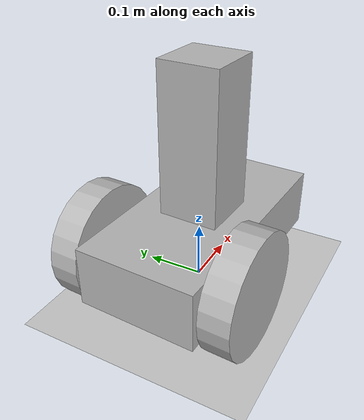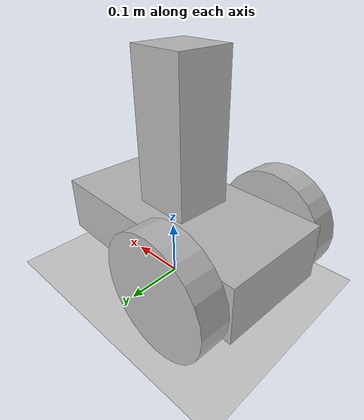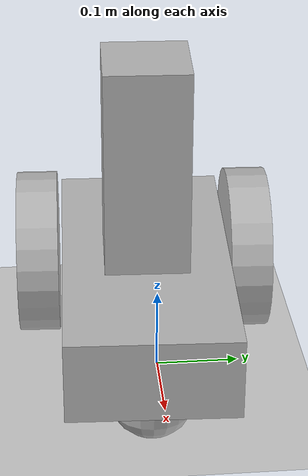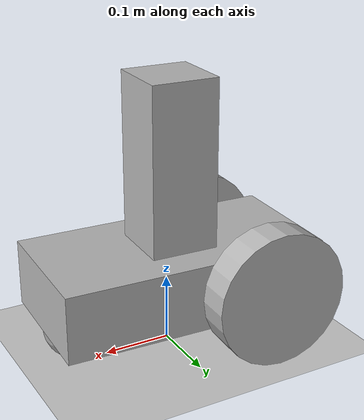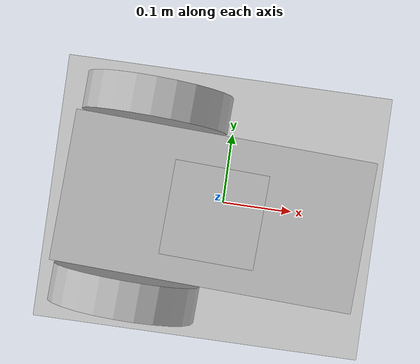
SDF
<sdf version="1.6">
 <world name="default">
  <light name="sun" type="directional">
   <pose>0 0 10 0 -0 0</pose>
   <diffuse>0.8 0.8 0.8 1</diffuse>
   <specular>0.1 0.1 0.1 1</specular>
   <attenuation>
    <range>1000</range>
    <constant>0.9</constant>
    <linear>0.01</linear>
    <quadratic>0.001</quadratic>
   </attenuation>
   <direction>-0.5 0.5 -1</direction>
  </light>
  <model name="ground_plane">
   <static>1</static>
   <link name="link">
    <collision name="collision">
     <geometry><plane><normal>0 0 1</normal><size>100 100</size></plane></geometry>
     <surface><friction><ode><mu>100</mu><mu2>50</mu2></ode></friction></surface>
    </collision>
    <visual name="visual">
     <cast_shadows>0</cast_shadows>
     <geometry><plane><normal>0 0 1</normal><size>100 100</size></plane></geometry>
     <material>
      <script><uri>file://media/materials/scripts/gazebo.material</uri><name>Gazebo/Grey</name></script>
     </material>
    </visual>
   </link>
  </model>
  <gravity>0 0 -9.8</gravity>
  <magnetic_field>6e-06 2.3e-05 -4.2e-05</magnetic_field>
  <atmosphere type="adiabatic"/>
  <physics name="default_physics" default="0" type="ode">
   <max_step_size>0.001</max_step_size>
   <real_time_factor>1</real_time_factor>
   <real_time_update_rate>1000</real_time_update_rate>
  </physics>
  <scene><ambient>0.4 0.4 0.4 1</ambient><background>0.7 0.7 0.7 1</background><shadows>1</shadows></scene>
  <spherical_coordinates>
   <surface_model>EARTH_WGS84</surface_model>
   <latitude_deg>0</latitude_deg>
   <longitude_deg>0</longitude_deg>
   <elevation>0</elevation>
   <heading_deg>0</heading_deg>
  </spherical_coordinates>
  <model name="sim_ajk">
   <link name="base_footprint">
    <inertial>
     <pose>0.074999 0 0.075004 0 -0 0</pose>
     <mass>1.00001</mass>
     <inertia>
      <ixx>0.00296074</ixx>
      <ixy>0</ixy>
      <ixz>0.00187528</ixz>
      <iyy>0.0135858</iyy>
      <iyz>0</iyz>
      <izz>0.0142094</izz>
     </inertia>
    </inertial>
    <collision name="base_footprint_fixed_joint_lump__base_link_collision">
     <pose>0 0 0.1 0 -0 0</pose>
     <geometry><box><size>0.4 0.2 0.1</size></box></geometry>
     <surface><friction><ode><mu>0.05</mu><mu2>0.05</mu2></ode></friction></surface>
    </collision>
    <collision name="base_footprint_fixed_joint_lump__caster_link_collision_1">
     <pose>0.15 0 0.05 0 -0 0</pose>
     <geometry><sphere><radius>0.05</radius></sphere></geometry>
     <surface><friction><ode><mu>1</mu><mu2>1</mu2></ode></friction></surface>
    </collision>
    <collision name="base_footprint_fixed_joint_lump__hokuyo_link_collision_2">
     <pose>0 0 0.25 0 -0 0</pose>
     <geometry><box><size>0.1 0.1 0.3</size></box></geometry>
    </collision>
    <visual name="base_footprint_fixed_joint_lump__base_link_visual">
     <pose>0 0 0.1 0 -0 0</pose>
     <geometry><box><size>0.4 0.2 0.1</size></box></geometry>
     <material><script><uri>__default__</uri><name>__default__</name></script></material>
    </visual>
    <visual name="base_footprint_fixed_joint_lump__caster_link_visual_1">
     <pose>0.15 0 0.05 0 -0 0</pose>
     <geometry><sphere><radius>0.05</radius></sphere></geometry>
     <material><script><uri>__default__</uri><name>__default__</name></script></material>
    </visual>
    <visual name="base_footprint_fixed_joint_lump__hokuyo_link_visual_2">
     <pose>0 0 0.25 0 -0 0</pose>
     <geometry><box><size>0.1 0.1 0.3</size></box></geometry>
     <material><script><uri>__default__</uri><name>__default__</name></script></material>
    </visual>
    <sensor name="head_hokuyo_sensor" type="ray">
     <visualize>1</visualize>
     <update_rate>10</update_rate>
     <ray>
      <scan>
       <horizontal>
        <samples>720</samples>
        <resolution>1</resolution>
        <min_angle>-2.355</min_angle>
        <max_angle>2.355</max_angle>
       </horizontal>
       <vertical><samples>1</samples><min_angle>0</min_angle><max_angle>0</max_angle></vertical>
      </scan>
      <range><min>0.1</min><max>30</max><resolution>0.01</resolution></range>
      <noise><type>gaussian</type><mean>0</mean><stddev>0.01</stddev></noise>
     </ray>
     <plugin name="gazebo_ros_head_hokuyo_controller" filename="libgazebo_ros_laser.so">
      <topicName>/scan</topicName>
      <frameName>hokuyo_link</frameName>
      <robotNamespace>/</robotNamespace>
     </plugin>
     <pose>0 0 0.25 0 -0 0</pose>
    </sensor>
   </link>
   <link name="left_wheel_link">
    <pose>-0.1 0.13 0.1 -1.5707 0 0</pose>
    <inertial>
     <mass>0.5</mass>
     <inertia>
      <ixx>0.00135417</ixx>
      <ixy>0</ixy>
      <ixz>0</ixz>
      <iyy>0.00135417</iyy>
      <iyz>0</iyz>
      <izz>0.0025</izz>
     </inertia>
    </inertial>
    <collision name="left_wheel_link_collision">
     <geometry><cylinder><length>0.05</length><radius>0.1</radius></cylinder></geometry>
     <surface><friction><ode><mu>3.2</mu><mu2>3.2</mu2></ode></friction></surface>
    </collision>
    <visual name="left_wheel_link_visual">
     <geometry><cylinder><length>0.05</length><radius>0.1</radius></cylinder></geometry>
     <material><script><uri>__default__</uri><name>__default__</name></script></material>
    </visual>
    <self_collide>1</self_collide>
   </link>
   <joint name="left_wheel_joint" type="revolute">
    <child>left_wheel_link</child>
    <parent>base_footprint</parent>
    <axis>
     <xyz>0 1 9.6e-05</xyz>
     <limit><lower>-1e+16</lower><upper>1e+16</upper></limit>
     <dynamics><spring_reference>0</spring_reference><spring_stiffness>0</spring_stiffness></dynamics>
     <use_parent_model_frame>1</use_parent_model_frame>
    </axis>
   </joint>
   <link name="right_wheel_link">
    <pose>-0.1 -0.13 0.1 1.5707 -0 0</pose>
    <inertial>
     <mass>0.5</mass>
     <inertia>
      <ixx>0.00135417</ixx>
      <ixy>0</ixy>
      <ixz>0</ixz>
      <iyy>0.00135417</iyy>
      <iyz>0</iyz>
      <izz>0.0025</izz>
     </inertia>
    </inertial>
    <collision name="right_wheel_link_collision">
     <geometry><cylinder><length>0.05</length><radius>0.1</radius></cylinder></geometry>
     <surface><friction><ode><mu>3.2</mu><mu2>3.2</mu2></ode></friction></surface>
    </collision>
    <visual name="right_wheel_link_visual">
     <geometry><cylinder><length>0.05</length><radius>0.1</radius></cylinder></geometry>
     <material><script><uri>__default__</uri><name>__default__</name></script></material>
    </visual>
    <self_collide>1</self_collide>
   </link>
   <joint name="right_wheel_joint" type="revolute">
    <child>right_wheel_link</child>
    <parent>base_footprint</parent>
    <axis>
     <xyz>0 1 -9.6e-05</xyz>
     <limit><lower>-1e+16</lower><upper>1e+16</upper></limit>
     <dynamics><spring_reference>0</spring_reference><spring_stiffness>0</spring_stiffness></dynamics>
     <use_parent_model_frame>1</use_parent_model_frame>
    </axis>
   </joint>
   <static>0</static>
   <plugin name="gazebo_ros_control" filename="libgazebo_ros_control.so">
    <robotNamespace>sim_ajk</robotNamespace>
   </plugin>
   <pose>-0.01306 -0.013099 0 1e-05 3e-06 -0.040824</pose>
  </model>
 </world>
</sdf>
